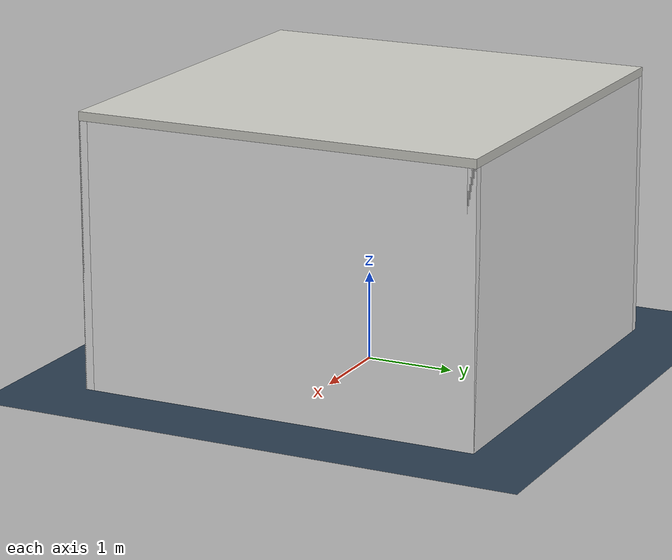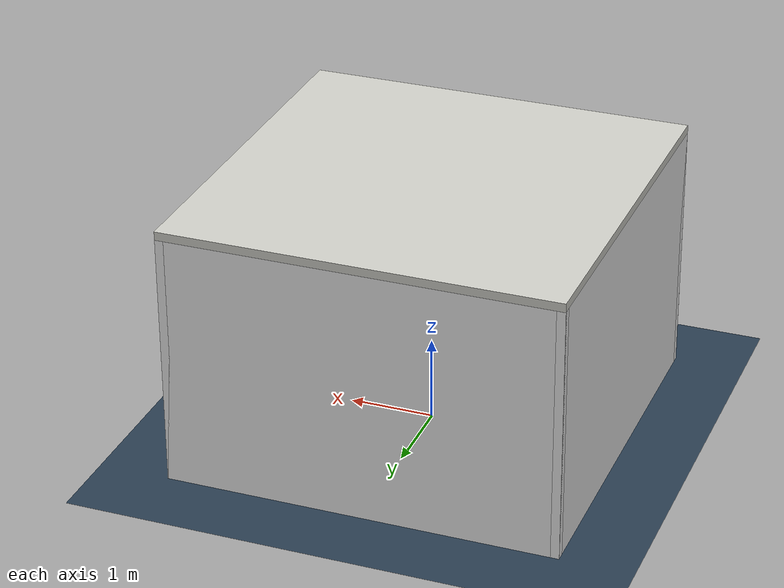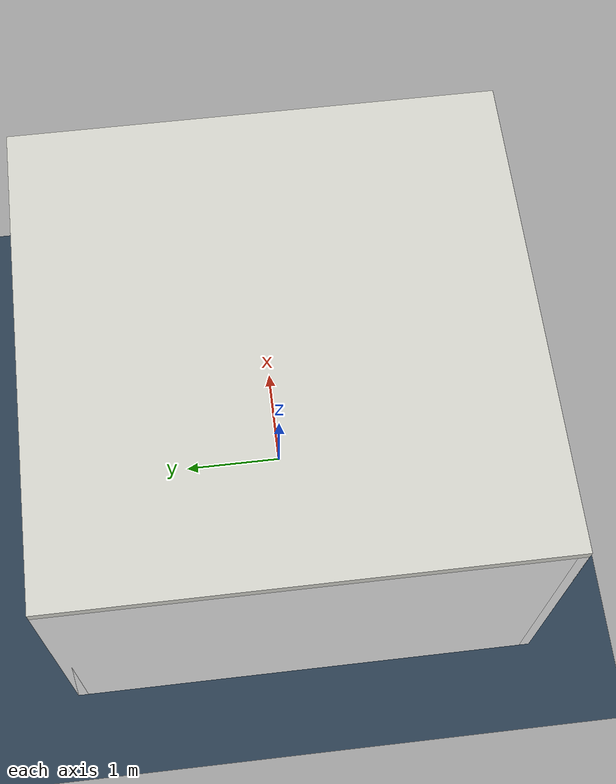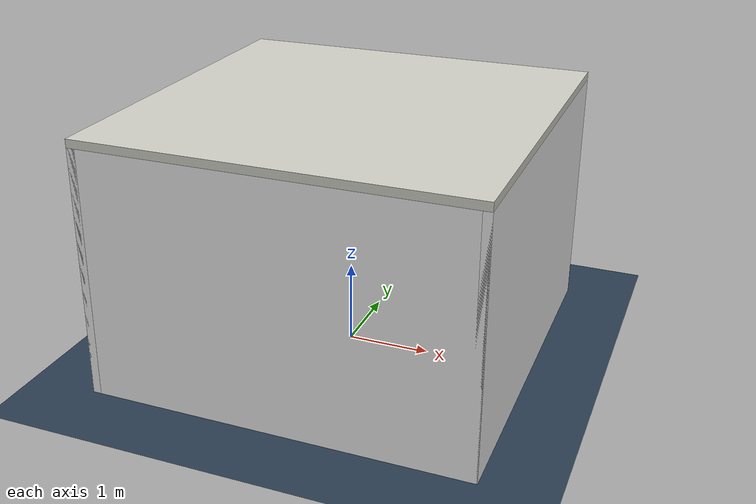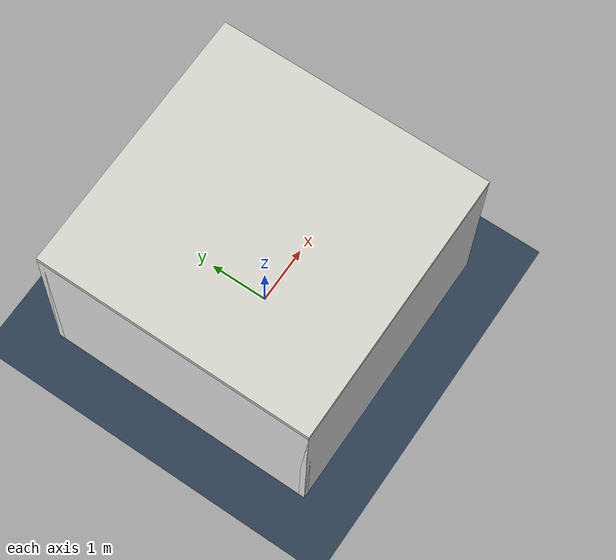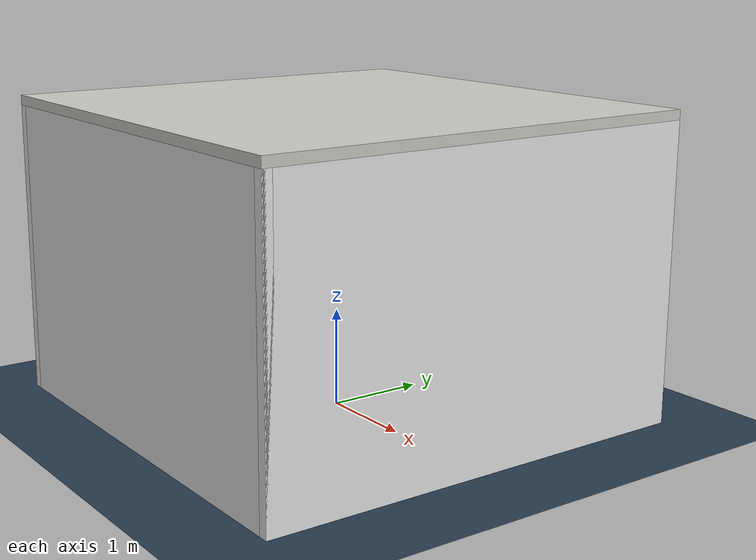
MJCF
<mujoco model="TinyRacer heldout_room_figure8">
  <option integrator="RK4" density="1.225" viscosity="1.8e-5" timestep="0.001"/>
  <compiler inertiafromgeom="false" autolimits="true" angle="degree"/>
  <statistic center="2.5 1.5 1.5" extent="7.5"/>
  <visual><headlight diffuse="0.58 0.58 0.58" ambient="0.38 0.38 0.38" specular="0 0 0"/><global azimuth="20" elevation="-25" ellipsoidinertia="true"/></visual>
  <asset>
    <texture type="skybox" builtin="gradient" rgb1="0.62 0.67 0.70" rgb2="0.24 0.28 0.31" width="512" height="3072"/>
    <texture type="2d" name="groundplane" builtin="checker" mark="edge" rgb1="0.22 0.30 0.38" rgb2="0.11 0.18 0.25" markrgb="0.8 0.8 0.8" width="512" height="512"/>
    <material name="groundplane" texture="groundplane" texuniform="true" texrepeat="3 3" reflectance="0.15"/>
    <material name="generic_ceiling" rgba="0.82 0.82 0.79 1" specular="0.04" shininess="0.08"/>
    <material name="generic_strip_light" rgba="1 0.98 0.86 1" emission="1" specular="0" shininess="0"/>
    <texture type="2d" name="generic_wall_texture" file="textures/off_white_painted_plaster.png"/>
    <material name="generic_wall" texture="generic_wall_texture" texrepeat="5 2" texuniform="true"
              rgba="1 1 1 1" specular="0.08" shininess="0.12"/>
    <texture type="2d" name="newbeedrone_gate_texture" file="textures/newbeedrone_gate_front_rgba_v1.png"/>
    <material name="newbeedrone_gate" texture="newbeedrone_gate_texture" texuniform="false" texrepeat="1 1"/>
    <mesh name="newbeedrone_gate_top" file="meshes/newbeedrone_gate_top.obj" scale="1 0.9 0.9"/>
    <mesh name="newbeedrone_gate_bottom" file="meshes/newbeedrone_gate_bottom.obj" scale="1 0.9 0.9"/>
    <mesh name="newbeedrone_gate_left" file="meshes/newbeedrone_gate_left.obj" scale="1 0.9 0.9"/>
    <mesh name="newbeedrone_gate_right" file="meshes/newbeedrone_gate_right.obj" scale="1 0.9 0.9"/>
    <mesh name="newbeedrone_gate_top_easy" file="meshes/newbeedrone_gate_top.obj" scale="1 1.8 1.8"/>
    <mesh name="newbeedrone_gate_bottom_easy" file="meshes/newbeedrone_gate_bottom.obj" scale="1 1.8 1.8"/>
    <mesh name="newbeedrone_gate_left_easy" file="meshes/newbeedrone_gate_left.obj" scale="1 1.8 1.8"/>
    <mesh name="newbeedrone_gate_right_easy" file="meshes/newbeedrone_gate_right.obj" scale="1 1.8 1.8"/>
  </asset>
  <worldbody>
    <light pos="1 0 5" dir="0 0 -1" directional="true"/>
    <geom name="generic_ceiling" type="box" pos="0.0 0.0 3.05" size="2.3000000000000003 2.3000000000000003 .05" material="generic_ceiling" contype="1" conaffinity="1"/>
    <geom name="generic_ceiling_strip" type="box" pos="0.0 0.0 2.985" size="1.9500000000000002 .055 .015" material="generic_strip_light" contype="0" conaffinity="0"/>
    <light name="generic_strip_light_1" pos="-1.6500000000000001 0.0 2.94" dir="0 0 -1" diffuse="0.85 0.82 0.72" cutoff="75" exponent="1" attenuation="0.25 0.08 0.02" castshadow="true"/>
    <light name="generic_strip_light_2" pos="-0.55 0.0 2.94" dir="0 0 -1" diffuse="0.85 0.82 0.72" cutoff="75" exponent="1" attenuation="0.25 0.08 0.02" castshadow="true"/>
    <light name="generic_strip_light_3" pos="0.5499999999999998 0.0 2.94" dir="0 0 -1" diffuse="0.85 0.82 0.72" cutoff="75" exponent="1" attenuation="0.25 0.08 0.02" castshadow="true"/>
    <light name="generic_strip_light_4" pos="1.6500000000000004 0.0 2.94" dir="0 0 -1" diffuse="0.85 0.82 0.72" cutoff="75" exponent="1" attenuation="0.25 0.08 0.02" castshadow="true"/>
    <geom name="floor" size="0 0 0.05" type="plane" material="groundplane"/>
    <body name="tangent_gate" pos="0.84052487 0.69616975 1.5" euler="0 0 24.18751">
      <geom name="tangent_gate_visual_top" type="mesh" mesh="newbeedrone_gate_top_easy" material="newbeedrone_gate" contype="0" conaffinity="0"/>
      <geom name="tangent_gate_visual_bottom" type="mesh" mesh="newbeedrone_gate_bottom_easy" material="newbeedrone_gate" contype="0" conaffinity="0"/>
      <geom name="tangent_gate_visual_left" type="mesh" mesh="newbeedrone_gate_left_easy" material="newbeedrone_gate" contype="0" conaffinity="0"/>
      <geom name="tangent_gate_visual_right" type="mesh" mesh="newbeedrone_gate_right_easy" material="newbeedrone_gate" contype="0" conaffinity="0"/>
      <!-- NewBee geometry scaled uniformly in the gate plane. -->
      <geom name="tangent_gate_left" type="box" pos="0 -0.558 0" size="0.025 0.108 0.45" rgba="0 0 0 0" contype="1" conaffinity="1"/>
      <geom name="tangent_gate_right" type="box" pos="0 0.558 0" size="0.025 0.108 0.45" rgba="0 0 0 0" contype="1" conaffinity="1"/>
      <geom name="tangent_gate_top" type="box" pos="0 0 0.558" size="0.025 0.666 0.108" rgba="0 0 0 0" contype="1" conaffinity="1"/>
      <geom name="tangent_gate_bottom" type="box" pos="0 0 -0.558" size="0.025 0.666 0.108" rgba="0 0 0 0" contype="1" conaffinity="1"/>
    </body>
    <geom name="easy_obstacle" type="box" pos="0.7787946060270543 -0.941492987512547 1.1" size="0.12 0.18 1.1" rgba="0.75 0.23 0.13 1" contype="1" conaffinity="1"/>
    <geom name="room_wall_west" type="box" pos="-2.25 0.0 1.5" size=".05 2.3000000000000003 1.5" material="generic_wall" contype="1" conaffinity="1"/>
    <geom name="room_wall_east" type="box" pos="2.25 0.0 1.5" size=".05 2.3000000000000003 1.5" material="generic_wall" contype="1" conaffinity="1"/>
    <geom name="room_wall_south" type="box" pos="0.0 -2.25 1.5" size="2.3000000000000003 .05 1.5" material="generic_wall" contype="1" conaffinity="1"/>
    <geom name="room_wall_north" type="box" pos="0.0 2.25 1.5" size="2.3000000000000003 .05 1.5" material="generic_wall" contype="1" conaffinity="1"/>
  </worldbody>
</mujoco>
